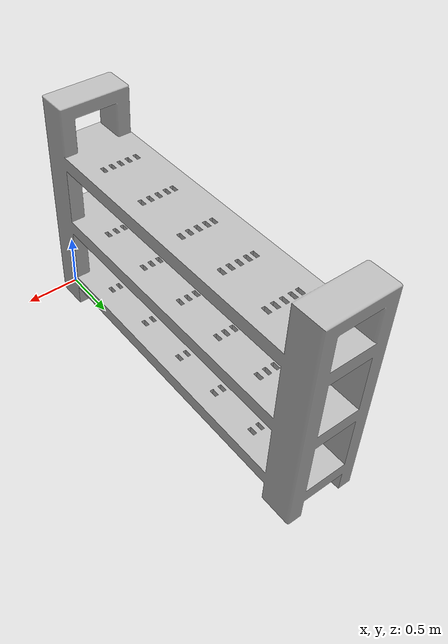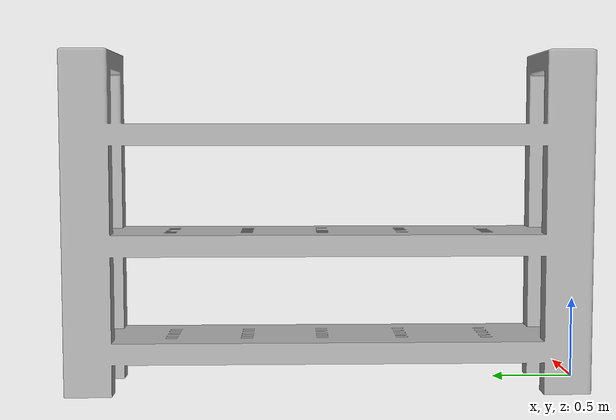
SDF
<?xml version='1.0'?>
<sdf version='1.6'>
  <model name='estanteria2'>
    <link name='link_0'>
      <pose frame=''>-0 0 0 0 -0 0</pose>
      <inertial>
        <mass>1</mass>
        <inertia>
          <ixx>16.6667</ixx>
          <ixy>0</ixy>
          <ixz>0</ixz>
          <iyy>16.6667</iyy>
          <iyz>0</iyz>
          <izz>16.6667</izz>
        </inertia>
      </inertial>
      <visual name='visual'>
        <geometry>
          <mesh>
            <uri>model://estanteria2/estanteria.dae</uri>
          </mesh>
        </geometry>
      </visual>
      <collision name='collision'>
        <geometry>
          <mesh>
            <uri>model://estanteria2/estanteria.dae</uri>
          </mesh>
        </geometry>
      </collision>
    </link>
  </model>
</sdf>
